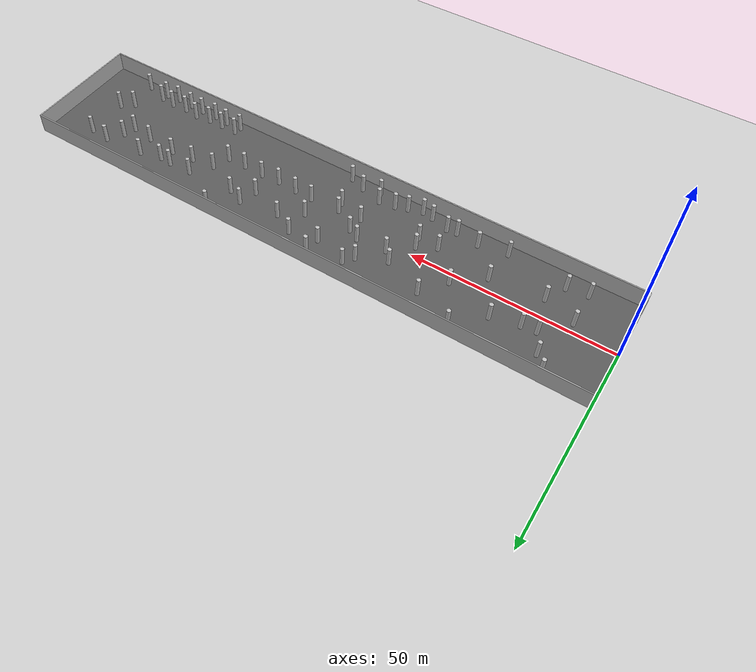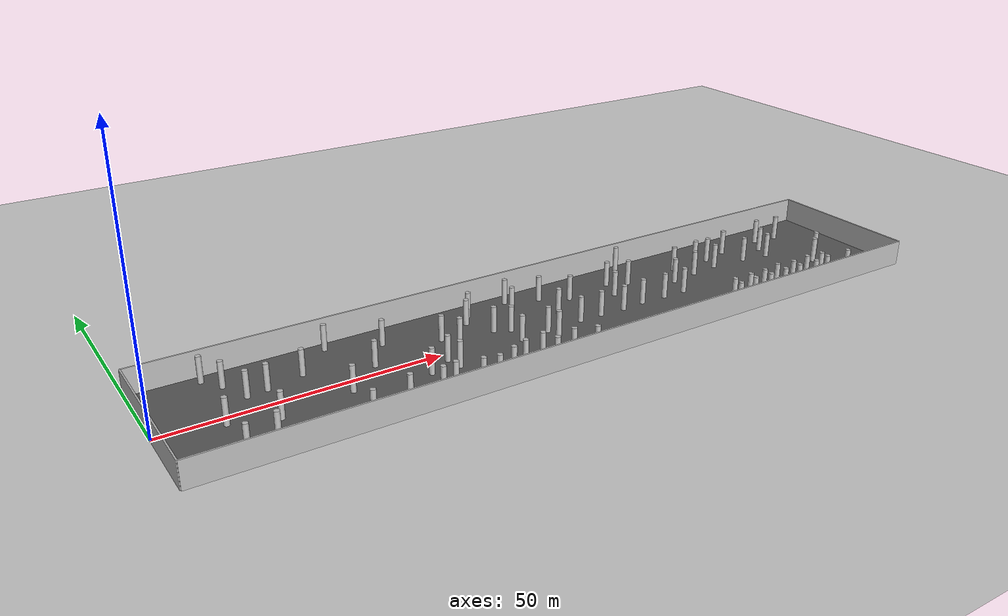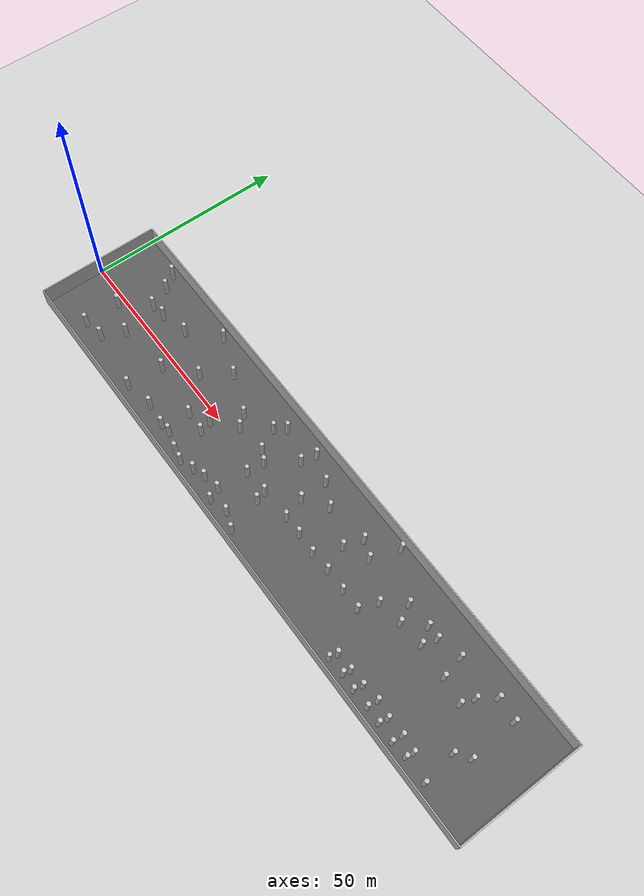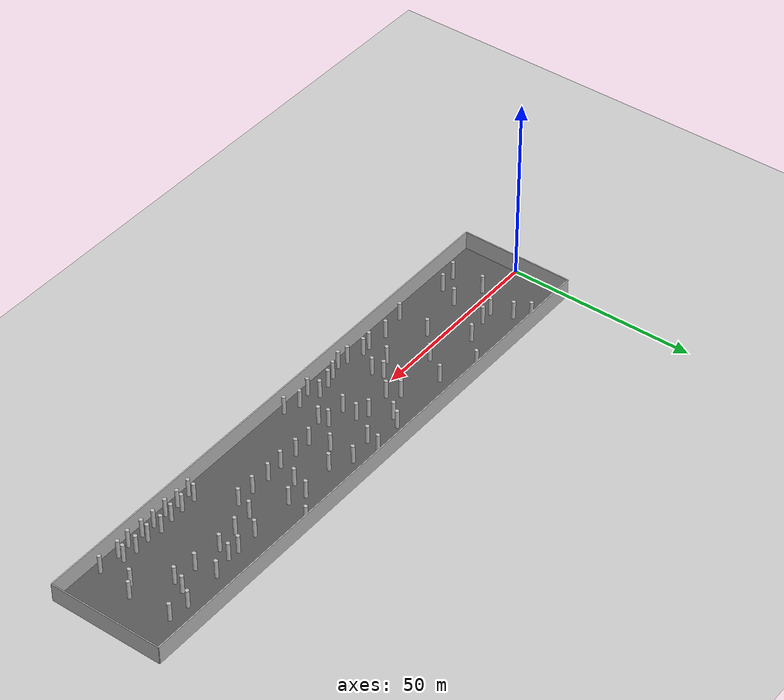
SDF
<?xml version="1.0" ?>
<sdf version="1.5">
  <world name="default">
    <plugin name="gazebo_ros_state" filename="libgazebo_ros_state.so">
      <ros>
        <namespace>/gazebo</namespace>
      </ros>
      <update_rate>20.0</update_rate>
    </plugin>

    <include><uri>model://sun</uri></include>
    <include><uri>model://ground_plane</uri></include>

    <model name="corridor_floor">
      <static>true</static>
      <pose>75 0 0.01 0 0 0</pose>
      <link name="link">
        <collision name="collision">
          <geometry><box><size>150 30 0.02</size></box></geometry>
        </collision>
        <visual name="visual">
          <geometry><box><size>150 30 0.02</size></box></geometry>
          <material>
            <ambient>0.25 0.25 0.25 1</ambient>
            <diffuse>0.35 0.35 0.35 1</diffuse>
          </material>
        </visual>
      </link>
    </model>

    <physics name="default_physics" default="0" type="ode">
      <gravity>0 0 -9.8066</gravity>
      <ode>
        <solver>
          <type>quick</type>
          <iters>10</iters>
          <sor>1.3</sor>
          <use_dynamic_moi_rescaling>0</use_dynamic_moi_rescaling>
        </solver>
        <constraints>
          <cfm>0</cfm>
          <erp>0.2</erp>
          <contact_max_correcting_vel>100</contact_max_correcting_vel>
          <contact_surface_layer>0.001</contact_surface_layer>
        </constraints>
      </ode>
      <max_step_size>0.004</max_step_size>
      <real_time_factor>1</real_time_factor>
      <real_time_update_rate>250</real_time_update_rate>
      <magnetic_field>6.0e-6 2.3e-5 -4.2e-5</magnetic_field>
    </physics>

    <model name="left_wall">
      <static>true</static>
      <pose>75 15.15 2.5 0 0 0</pose>
      <link name="link">
        <collision name="collision">
          <geometry><box><size>150 0.3 5</size></box></geometry>
        </collision>
        <visual name="visual">
          <geometry><box><size>150 0.3 5</size></box></geometry>
        </visual>
      </link>
    </model>

    <model name="right_wall">
      <static>true</static>
      <pose>75 -15.15 2.5 0 0 0</pose>
      <link name="link">
        <collision name="collision">
          <geometry><box><size>150 0.3 5</size></box></geometry>
        </collision>
        <visual name="visual">
          <geometry><box><size>150 0.3 5</size></box></geometry>
        </visual>
      </link>
    </model>

    <model name="start_wall">
      <static>true</static>
      <pose>0 0 2.5 0 0 0</pose>
      <link name="link">
        <collision name="collision">
          <geometry><box><size>0.3 30.3 5</size></box></geometry>
        </collision>
        <visual name="visual">
          <geometry><box><size>0.3 30.3 5</size></box></geometry>
        </visual>
      </link>
    </model>

    <model name="end_wall">
      <static>true</static>
      <pose>150 0 2.5 0 0 0</pose>
      <link name="link">
        <collision name="collision">
          <geometry><box><size>0.3 30.3 5</size></box></geometry>
        </collision>
        <visual name="visual">
          <geometry><box><size>0.3 30.3 5</size></box></geometry>
        </visual>
      </link>
    </model>

    <include><name>cylinder_000</name><uri>model://cylinder_r05_h5</uri><pose>16.418 -10.049 2.5 0 0 0</pose></include>
    <include><name>cylinder_001</name><uri>model://cylinder_r05_h5</uri><pose>31.920 -3.146 2.5 0 0 0</pose></include>
    <include><name>cylinder_002</name><uri>model://cylinder_r05_h5</uri><pose>44.105 -11.257 2.5 0 0 0</pose></include>
    <include><name>cylinder_003</name><uri>model://cylinder_r05_h5</uri><pose>38.401 -10.675 2.5 0 0 0</pose></include>
    <include><name>cylinder_004</name><uri>model://cylinder_r05_h5</uri><pose>31.273 -11.957 2.5 0 0 0</pose></include>
    <include><name>cylinder_005</name><uri>model://cylinder_r05_h5</uri><pose>19.022 -4.775 2.5 0 0 0</pose></include>
    <include><name>cylinder_006</name><uri>model://cylinder_r05_h5</uri><pose>53.907 -12.825 2.5 0 0 0</pose></include>
    <include><name>cylinder_007</name><uri>model://cylinder_r05_h5</uri><pose>65.070 -2.619 2.5 0 0 0</pose></include>
    <include><name>cylinder_008</name><uri>model://cylinder_r05_h5</uri><pose>46.615 -10.984 2.5 0 0 0</pose></include>
    <include><name>cylinder_009</name><uri>model://cylinder_r05_h5</uri><pose>50.052 -2.277 2.5 0 0 0</pose></include>
    <include><name>cylinder_010</name><uri>model://cylinder_r05_h5</uri><pose>70.941 -2.215 2.5 0 0 0</pose></include>
    <include><name>cylinder_011</name><uri>model://cylinder_r05_h5</uri><pose>65.540 -12.691 2.5 0 0 0</pose></include>
    <include><name>cylinder_012</name><uri>model://cylinder_r05_h5</uri><pose>71.580 -4.659 2.5 0 0 0</pose></include>
    <include><name>cylinder_013</name><uri>model://cylinder_r05_h5</uri><pose>73.798 -13.028 2.5 0 0 0</pose></include>
    <include><name>cylinder_014</name><uri>model://cylinder_r05_h5</uri><pose>69.885 -11.542 2.5 0 0 0</pose></include>
    <include><name>cylinder_015</name><uri>model://cylinder_r05_h5</uri><pose>50.798 -5.154 2.5 0 0 0</pose></include>
    <include><name>cylinder_016</name><uri>model://cylinder_r05_h5</uri><pose>45.561 -4.788 2.5 0 0 0</pose></include>
    <include><name>cylinder_017</name><uri>model://cylinder_r05_h5</uri><pose>60.399 -10.682 2.5 0 0 0</pose></include>
    <include><name>cylinder_018</name><uri>model://cylinder_r05_h5</uri><pose>51.107 -12.266 2.5 0 0 0</pose></include>
    <include><name>cylinder_019</name><uri>model://cylinder_r05_h5</uri><pose>64.407 -9.968 2.5 0 0 0</pose></include>
    <include><name>cylinder_020</name><uri>model://cylinder_r05_h5</uri><pose>57.418 -11.663 2.5 0 0 0</pose></include>
    <include><name>cylinder_021</name><uri>model://cylinder_r05_h5</uri><pose>78.502 -1.918 2.5 0 0 0</pose></include>
    <include><name>cylinder_022</name><uri>model://cylinder_r05_h5</uri><pose>83.148 -1.990 2.5 0 0 0</pose></include>
    <include><name>cylinder_023</name><uri>model://cylinder_r05_h5</uri><pose>88.258 -2.295 2.5 0 0 0</pose></include>
    <include><name>cylinder_024</name><uri>model://cylinder_r05_h5</uri><pose>93.090 -1.956 2.5 0 0 0</pose></include>
    <include><name>cylinder_025</name><uri>model://cylinder_r05_h5</uri><pose>98.390 -2.133 2.5 0 0 0</pose></include>
    <include><name>cylinder_026</name><uri>model://cylinder_r05_h5</uri><pose>103.329 -2.112 2.5 0 0 0</pose></include>
    <include><name>cylinder_027</name><uri>model://cylinder_r05_h5</uri><pose>108.221 -10.937 2.5 0 0 0</pose></include>
    <include><name>cylinder_028</name><uri>model://cylinder_r05_h5</uri><pose>107.825 -12.879 2.5 0 0 0</pose></include>
    <include><name>cylinder_029</name><uri>model://cylinder_r05_h5</uri><pose>112.333 -10.888 2.5 0 0 0</pose></include>
    <include><name>cylinder_030</name><uri>model://cylinder_r05_h5</uri><pose>111.973 -12.567 2.5 0 0 0</pose></include>
    <include><name>cylinder_031</name><uri>model://cylinder_r05_h5</uri><pose>116.141 -10.785 2.5 0 0 0</pose></include>
    <include><name>cylinder_032</name><uri>model://cylinder_r05_h5</uri><pose>115.726 -12.849 2.5 0 0 0</pose></include>
    <include><name>cylinder_033</name><uri>model://cylinder_r05_h5</uri><pose>120.189 -10.218 2.5 0 0 0</pose></include>
    <include><name>cylinder_034</name><uri>model://cylinder_r05_h5</uri><pose>119.941 -12.623 2.5 0 0 0</pose></include>
    <include><name>cylinder_035</name><uri>model://cylinder_r05_h5</uri><pose>124.052 -10.775 2.5 0 0 0</pose></include>
    <include><name>cylinder_036</name><uri>model://cylinder_r05_h5</uri><pose>123.687 -12.765 2.5 0 0 0</pose></include>
    <include><name>cylinder_037</name><uri>model://cylinder_r05_h5</uri><pose>128.227 -10.492 2.5 0 0 0</pose></include>
    <include><name>cylinder_038</name><uri>model://cylinder_r05_h5</uri><pose>127.998 -12.987 2.5 0 0 0</pose></include>
    <include><name>cylinder_039</name><uri>model://cylinder_r05_h5</uri><pose>131.990 -10.840 2.5 0 0 0</pose></include>
    <include><name>cylinder_040</name><uri>model://cylinder_r05_h5</uri><pose>131.726 -12.578 2.5 0 0 0</pose></include>
    <include><name>cylinder_041</name><uri>model://cylinder_r05_h5</uri><pose>11.281 -10.845 2.5 0 0 0</pose></include>
    <include><name>cylinder_042</name><uri>model://cylinder_r05_h5</uri><pose>11.154 -2.037 2.5 0 0 0</pose></include>
    <include><name>cylinder_043</name><uri>model://cylinder_r05_h5</uri><pose>136.565 -4.835 2.5 0 0 0</pose></include>
    <include><name>cylinder_044</name><uri>model://cylinder_r05_h5</uri><pose>139.502 -2.572 2.5 0 0 0</pose></include>
    <include><name>cylinder_045</name><uri>model://cylinder_r05_h5</uri><pose>137.543 -12.660 2.5 0 0 0</pose></include>
    <include><name>cylinder_046</name><uri>model://cylinder_r05_h5</uri><pose>130.255 2.350 2.5 0 0 0</pose></include>
    <include><name>cylinder_047</name><uri>model://cylinder_r05_h5</uri><pose>16.733 4.333 2.5 0 0 0</pose></include>
    <include><name>cylinder_048</name><uri>model://cylinder_r05_h5</uri><pose>131.320 5.447 2.5 0 0 0</pose></include>
    <include><name>cylinder_049</name><uri>model://cylinder_r05_h5</uri><pose>59.924 8.169 2.5 0 0 0</pose></include>
    <include><name>cylinder_050</name><uri>model://cylinder_r05_h5</uri><pose>82.313 6.893 2.5 0 0 0</pose></include>
    <include><name>cylinder_051</name><uri>model://cylinder_r05_h5</uri><pose>117.745 7.064 2.5 0 0 0</pose></include>
    <include><name>cylinder_052</name><uri>model://cylinder_r05_h5</uri><pose>110.770 3.131 2.5 0 0 0</pose></include>
    <include><name>cylinder_053</name><uri>model://cylinder_r05_h5</uri><pose>108.728 7.083 2.5 0 0 0</pose></include>
    <include><name>cylinder_054</name><uri>model://cylinder_r05_h5</uri><pose>77.022 3.119 2.5 0 0 0</pose></include>
    <include><name>cylinder_055</name><uri>model://cylinder_r05_h5</uri><pose>124.464 3.213 2.5 0 0 0</pose></include>
    <include><name>cylinder_056</name><uri>model://cylinder_r05_h5</uri><pose>11.961 12.981 2.5 0 0 0</pose></include>
    <include><name>cylinder_057</name><uri>model://cylinder_r05_h5</uri><pose>33.868 12.732 2.5 0 0 0</pose></include>
    <include><name>cylinder_058</name><uri>model://cylinder_r05_h5</uri><pose>69.955 8.329 2.5 0 0 0</pose></include>
    <include><name>cylinder_059</name><uri>model://cylinder_r05_h5</uri><pose>65.417 1.566 2.5 0 0 0</pose></include>
    <include><name>cylinder_060</name><uri>model://cylinder_r05_h5</uri><pose>20.362 4.733 2.5 0 0 0</pose></include>
    <include><name>cylinder_061</name><uri>model://cylinder_r05_h5</uri><pose>27.120 6.362 2.5 0 0 0</pose></include>
    <include><name>cylinder_062</name><uri>model://cylinder_r05_h5</uri><pose>61.782 10.657 2.5 0 0 0</pose></include>
    <include><name>cylinder_063</name><uri>model://cylinder_r05_h5</uri><pose>14.427 9.502 2.5 0 0 0</pose></include>
    <include><name>cylinder_064</name><uri>model://cylinder_r05_h5</uri><pose>43.247 9.018 2.5 0 0 0</pose></include>
    <include><name>cylinder_065</name><uri>model://cylinder_r05_h5</uri><pose>55.198 2.388 2.5 0 0 0</pose></include>
    <include><name>cylinder_066</name><uri>model://cylinder_r05_h5</uri><pose>104.918 2.324 2.5 0 0 0</pose></include>
    <include><name>cylinder_067</name><uri>model://cylinder_r05_h5</uri><pose>98.577 13.365 2.5 0 0 0</pose></include>
    <include><name>cylinder_068</name><uri>model://cylinder_r05_h5</uri><pose>38.709 2.669 2.5 0 0 0</pose></include>
    <include><name>cylinder_069</name><uri>model://cylinder_r05_h5</uri><pose>92.318 8.287 2.5 0 0 0</pose></include>
    <include><name>cylinder_070</name><uri>model://cylinder_r05_h5</uri><pose>139.125 8.628 2.5 0 0 0</pose></include>
    <include><name>cylinder_071</name><uri>model://cylinder_r05_h5</uri><pose>116.793 3.730 2.5 0 0 0</pose></include>
    <include><name>cylinder_072</name><uri>model://cylinder_r05_h5</uri><pose>114.674 7.298 2.5 0 0 0</pose></include>
    <include><name>cylinder_073</name><uri>model://cylinder_r05_h5</uri><pose>90.846 3.767 2.5 0 0 0</pose></include>
    <include><name>cylinder_074</name><uri>model://cylinder_r05_h5</uri><pose>52.935 4.995 2.5 0 0 0</pose></include>
    <include><name>cylinder_075</name><uri>model://cylinder_r05_h5</uri><pose>70.723 12.038 2.5 0 0 0</pose></include>
    <include><name>cylinder_076</name><uri>model://cylinder_r05_h5</uri><pose>133.862 9.205 2.5 0 0 0</pose></include>
    <include><name>cylinder_077</name><uri>model://cylinder_r05_h5</uri><pose>123.392 8.403 2.5 0 0 0</pose></include>
    <include><name>cylinder_078</name><uri>model://cylinder_r05_h5</uri><pose>62.649 3.040 2.5 0 0 0</pose></include>
    <include><name>cylinder_079</name><uri>model://cylinder_r05_h5</uri><pose>96.314 6.555 2.5 0 0 0</pose></include>
    <include><name>cylinder_080</name><uri>model://cylinder_r05_h5</uri><pose>77.064 9.730 2.5 0 0 0</pose></include>

  </world>
</sdf>

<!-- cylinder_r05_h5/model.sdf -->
<sdf version="1.5">
  <model name="cylinder_r05_h5">
    <static>true</static>
    <link name="link">
      <collision name="collision">
        <geometry>
          <cylinder>
            <radius>0.5</radius>
            <length>5</length>
          </cylinder>
        </geometry>
      </collision>
      <visual name="visual">
        <geometry>
          <cylinder>
            <radius>0.5</radius>
            <length>5</length>
          </cylinder>
        </geometry>
        <material>
          <ambient>0.5 0.5 0.5 1</ambient>
          <diffuse>0.75 0.75 0.75 1</diffuse>
        </material>
      </visual>
    </link>
  </model>
</sdf>
